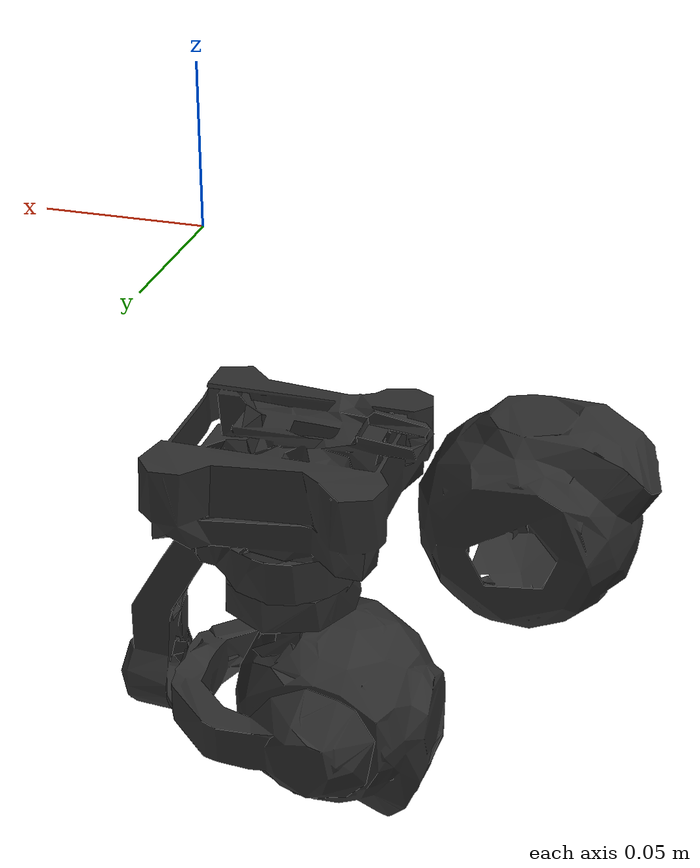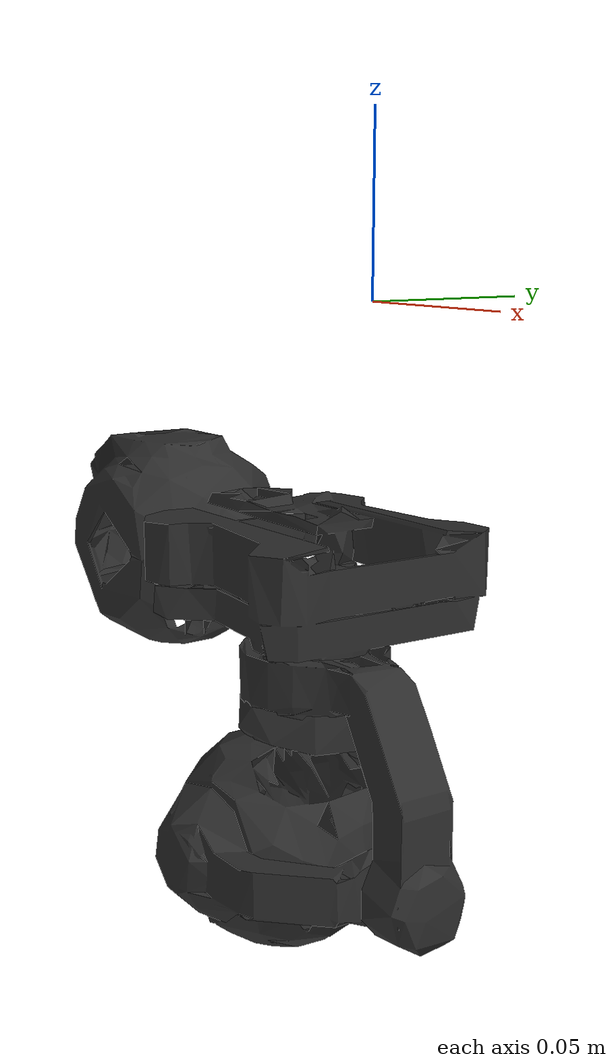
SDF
<?xml version="1.0" encoding="UTF-8"?>
<sdf version='1.9'>
  <model name='gimbal'>
    <self_collide>false</self_collide>
    <static>false</static>

  <!-- Gimbal mount point -->
    <link name="cgo3_mount_link">
      <inertial>
        <pose>-0.02552 0 -0.08136 0 0 0</pose>
        <mass>0.1</mass>
        <inertia>
          <ixx>0.001</ixx>
          <ixy>0</ixy>
          <ixz>0</ixz>
          <iyy>0.001</iyy>
          <iyz>0</iyz>
          <izz>0.001</izz>
        </inertia>
      </inertial>
      <visual name="cgo3_mount_visual">
        <geometry>
          <mesh>
            <scale>0.001 0.001 0.001</scale>
            <uri>model://gimbal/meshes/cgo3_mount_remeshed_v1.stl</uri>
          </mesh>
        </geometry>
        <material>
          <ambient>.175 .175 .175  1.0</ambient>
          <diffuse>.175 .175 .175  1.0</diffuse>
          <specular>.175 .175 .175  1.0</specular>
        </material>
      </visual>
    </link>

  <!-- Gimbal vertical arm -->
    <link name="cgo3_vertical_arm_link">
      <inertial>
        <pose>0 0 -0.1283 0 0 0</pose>
        <mass>0.1</mass>
        <inertia>
          <ixx>0.001</ixx>
          <ixy>0</ixy>
          <ixz>0</ixz>
          <iyy>0.001</iyy>
          <iyz>0</iyz>
          <izz>0.001</izz>
        </inertia>
      </inertial>
      <visual name='cgo3_vertical_arm_visual'>
        <geometry>
          <mesh>
            <scale>0.001 0.001 0.001</scale>
            <uri>model://gimbal/meshes/cgo3_vertical_arm_remeshed_v1.stl</uri>
          </mesh>
        </geometry>
        <material>
          <ambient>.175 .175 .175  1.0</ambient>
          <diffuse>.175 .175 .175  1.0</diffuse>
          <specular>.175 .175 .175  1.0</specular>
        </material>
      </visual>
    </link>

  <!-- Yaw joint -->
    <joint name='cgo3_vertical_arm_joint' type='revolute'>
      <child>cgo3_vertical_arm_link</child>
      <parent>cgo3_mount_link</parent>
      <pose>-0.02552 0 0 0 0 0</pose>
      <axis>
        <xyz>0 0 -1</xyz>
        <limit>
          <lower>-1e+16</lower>
          <upper>1e+16</upper>
          <effort>100</effort>
          <velocity>-1</velocity>
        </limit>
        <dynamics>
          <damping>0.1</damping>
        </dynamics>
      </axis>
      <physics>
        <ode>
          <implicit_spring_damper>1</implicit_spring_damper>
          <limit>
            <cfm>0.1</cfm>
            <erp>0.2</erp>
          </limit>
        </ode>
      </physics>
    </joint>

   <!-- Gimbal horizontal arm -->
    <link name="cgo3_horizontal_arm_link">
      <inertial>
        <pose>-0.0213 0 -0.162 0 0 0</pose>
        <mass>0.1</mass>
        <inertia>
          <ixx>0.001</ixx>
          <ixy>0</ixy>
          <ixz>0</ixz>
          <iyy>0.001</iyy>
          <iyz>0</iyz>
          <izz>0.001</izz>
        </inertia>
      </inertial>
      <visual name='cgo3_horizontal_arm_visual'>
        <geometry>
          <mesh>
            <scale>0.001 0.001 0.001</scale>
            <uri>model://gimbal/meshes/cgo3_horizontal_arm_remeshed_v1.stl</uri>
          </mesh>
        </geometry>
        <material>
          <ambient>.175 .175 .175  1.0</ambient>
          <diffuse>.175 .175 .175  1.0</diffuse>
          <specular>.175 .175 .175  1.0</specular>
        </material>
      </visual>
    </link>

  <!-- Roll joint -->
    <joint name='cgo3_horizontal_arm_joint' type='revolute'>
      <child>cgo3_horizontal_arm_link</child>
      <parent>cgo3_vertical_arm_link</parent>
      <pose>0 0 -0.1619 0 0 0</pose>
      <axis>
        <xyz>-1 0 0</xyz>
        <limit>
          <lower>-0.785398</lower>
          <upper>0.785398</upper>
          <effort>100</effort>
          <velocity>-1</velocity>
        </limit>
        <dynamics>
          <damping>0.1</damping>
        </dynamics>
      </axis>
      <physics>
        <ode>
          <implicit_spring_damper>1</implicit_spring_damper>
          <limit>
            <cfm>0.1</cfm>
            <erp>0.2</erp>
          </limit>
        </ode>
      </physics>
    </joint>

   <!-- Camera -->
    <link name="camera_link">
      <inertial>
        <pose>-0.0412 0 -0.162 0 0 0</pose>
        <mass>0.1</mass>
        <inertia>
          <ixx>0.001</ixx>
          <ixy>0</ixy>
          <ixz>0</ixz>
          <iyy>0.001</iyy>
          <iyz>0</iyz>
          <izz>0.001</izz>
        </inertia>
      </inertial>
      <collision name='cgo3_camera_collision'>
        <pose>-0.0412 0 -0.162 0 0 0</pose>
        <geometry>
          <sphere>
            <radius>0.035</radius>
          </sphere>
        </geometry>
        <surface>
          <friction>
            <ode>
              <mu>1</mu>
              <mu2>1</mu2>
            </ode>
          </friction>
          <contact>
            <ode>
              <kp>1e+8</kp>
              <kd>1</kd>
              <max_vel>0.01</max_vel>
              <min_depth>0.001</min_depth>
            </ode>
          </contact>
        </surface>
      </collision>
      <visual name='cgo3_camera_visual'>
        <geometry>
          <mesh>
            <scale>0.001 0.001 0.001</scale>
            <uri>model://gimbal/meshes/cgo3_camera_remeshed_v1.stl</uri>
          </mesh>
        </geometry>
        <material>
          <ambient>.175 .175 .175  1.0</ambient>
          <diffuse>.175 .175 .175  1.0</diffuse>
          <specular>.175 .175 .175  1.0</specular>
        </material>
      </visual>

      <sensor name="camera_imu" type="imu">
        <always_on>1</always_on>
        <update_rate>250</update_rate>
        <pose>-0.0412 0 -0.162 0 0 3.14</pose>
        <imu>
          <angular_velocity>
            <x>
              <noise type="gaussian">
                <mean>0</mean>
                <stddev>0.00018665</stddev>
                <dynamic_bias_stddev>3.8785e-05</dynamic_bias_stddev>
                <dynamic_bias_correlation_time>1000</dynamic_bias_correlation_time>
              </noise>
            </x>
            <y>
              <noise type="gaussian">
                <mean>0</mean>
                <stddev>0.00018665</stddev>
                <dynamic_bias_stddev>3.8785e-05</dynamic_bias_stddev>
                <dynamic_bias_correlation_time>1000</dynamic_bias_correlation_time>
              </noise>
            </y>
            <z>
              <noise type="gaussian">
                <mean>0</mean>
                <stddev>0.00018665</stddev>
                <dynamic_bias_stddev>3.8785e-05</dynamic_bias_stddev>
                <dynamic_bias_correlation_time>1000</dynamic_bias_correlation_time>
              </noise>
            </z>
          </angular_velocity>
          <linear_acceleration>
            <x>
              <noise type="gaussian">
                <mean>0</mean>
                <stddev>0.00186</stddev>
                <dynamic_bias_stddev>0.006</dynamic_bias_stddev>
                <dynamic_bias_correlation_time>300</dynamic_bias_correlation_time>
              </noise>
            </x>
            <y>
              <noise type="gaussian">
                <mean>0</mean>
                <stddev>0.00186</stddev>
                <dynamic_bias_stddev>0.006</dynamic_bias_stddev>
                <dynamic_bias_correlation_time>300</dynamic_bias_correlation_time>
              </noise>
            </y>
            <z>
              <noise type="gaussian">
                <mean>0</mean>
                <stddev>0.00186</stddev>
                <dynamic_bias_stddev>0.006</dynamic_bias_stddev>
                <dynamic_bias_correlation_time>300</dynamic_bias_correlation_time>
              </noise>
            </z>
          </linear_acceleration>
        </imu>
      </sensor>

      <sensor name="camera" type="camera">
        <pose>-0.074 0 -0.162 0 0 3.14</pose>
        <camera>
          <horizontal_fov>2.0</horizontal_fov>
          <image>
            <format>R8G8B8</format>
             <format>R8G8B8</format>
            <width>1280</width>
            <height>720</height>
          </image>
          <clip>
            <near>0.05</near>
            <far>15000</far>
          </clip>
        </camera>
        <always_on>1</always_on>
        <update_rate>30</update_rate>
        <visualize>true</visualize>
      </sensor>
    </link>

  <!-- Pitch joint -->
    <joint name='cgo3_camera_joint' type='revolute'>
      <child>camera_link</child>
      <parent>cgo3_horizontal_arm_link</parent>
      <pose>-0.0412 0 -0.162 0 0 0</pose>
      <axis>
        <xyz>0 1 0</xyz>
        <limit>
          <lower>-2.35619</lower>
          <upper>0.7854</upper>
          <effort>100</effort>
          <velocity>-1</velocity>
        </limit>
        <dynamics>
          <damping>0.1</damping>
        </dynamics>
      </axis>
      <physics>
        <ode>
          <implicit_spring_damper>1</implicit_spring_damper>
          <limit>
            <cfm>0.1</cfm>
            <erp>0.2</erp>
          </limit>
        </ode>
      </physics>
    </joint>

      <!-- Новая камера -->
    <link name="downward_camera_link">
        <pose>0.06 0 -0.122 0 1.57 0</pose>
        <inertial>
            <mass>0.1</mass>
            <inertia>
                <ixx>0.001</ixx>
                <iyy>0.001</iyy>
                <izz>0.001</izz>
            </inertia>
        </inertial>
        <visual name="downward_camera_visual">
            <geometry>
                <mesh>
                    <uri>model://gimbal/meshes/cgo3_camera_remeshed_v1.stl</uri>
                    <scale>0.001 0.001 0.001</scale>
                </mesh>
            </geometry>
            <material>
              <ambient>.175 .175 .175  1.0</ambient>
              <diffuse>.175 .175 .175  1.0</diffuse>
              <specular>.175 .175 .175  1.0</specular>
            </material>
        </visual>
        <collision name="downward_camera_collision">
            <geometry>
                <box>
                    <size>0.05 0.05 0.05</size>
                </box>
            </geometry>
        </collision>
        <sensor name="downward_camera" type="camera">
            <camera>
                <horizontal_fov>1.047</horizontal_fov>
                <image>
                    <width>1280</width>
                    <height>720</height>
                </image>
                <clip>
                    <near>0.05</near>
                    <far>15000</far>
                </clip>
            </camera>
        </sensor>
    </link>

    <joint name="downward_camera_joint" type="fixed">
        <parent>cgo3_horizontal_arm_link</parent>
        <child>downward_camera_link</child>
        <pose>0 0 -0.162 0 1.57 0</pose>
    </joint>

  <!-- Plugins -->

    <plugin
      filename="gz-sim-joint-position-controller-system"
      name="gz::sim::systems::JointPositionController">
      <joint_name>cgo3_horizontal_arm_joint</joint_name>
      <sub_topic>command/gimbal_roll</sub_topic>
      <p_gain>0.8</p_gain>
      <i_gain>0.035</i_gain>
      <d_gain>0.02</d_gain>
      <i_max>0</i_max>
      <i_min>0</i_min>
      <cmd_max>0.3</cmd_max>
      <cmd_min>-0.3</cmd_min>
    </plugin>

    <plugin
      filename="gz-sim-joint-position-controller-system"
      name="gz::sim::systems::JointPositionController">
      <joint_name>cgo3_camera_joint</joint_name>
      <sub_topic>command/gimbal_pitch</sub_topic>
      <p_gain>0.8</p_gain>
      <i_gain>0.01245</i_gain>
      <d_gain>0.015</d_gain>
      <i_max>0</i_max>
      <i_min>0</i_min>
      <cmd_max>0.3</cmd_max>
      <cmd_min>-0.3</cmd_min>
    </plugin>

    <plugin
      filename="gz-sim-joint-position-controller-system"
      name="gz::sim::systems::JointPositionController">
      <joint_name>cgo3_vertical_arm_joint</joint_name>
      <sub_topic>command/gimbal_yaw</sub_topic>
      <p_gain>0.3</p_gain>
      <i_gain>0.01245</i_gain>
      <d_gain>0.015</d_gain>
      <i_max>0</i_max>
      <i_min>0</i_min>
      <cmd_max>0.3</cmd_max>
      <cmd_min>-0.3</cmd_min>
    </plugin>

  </model>
</sdf>
